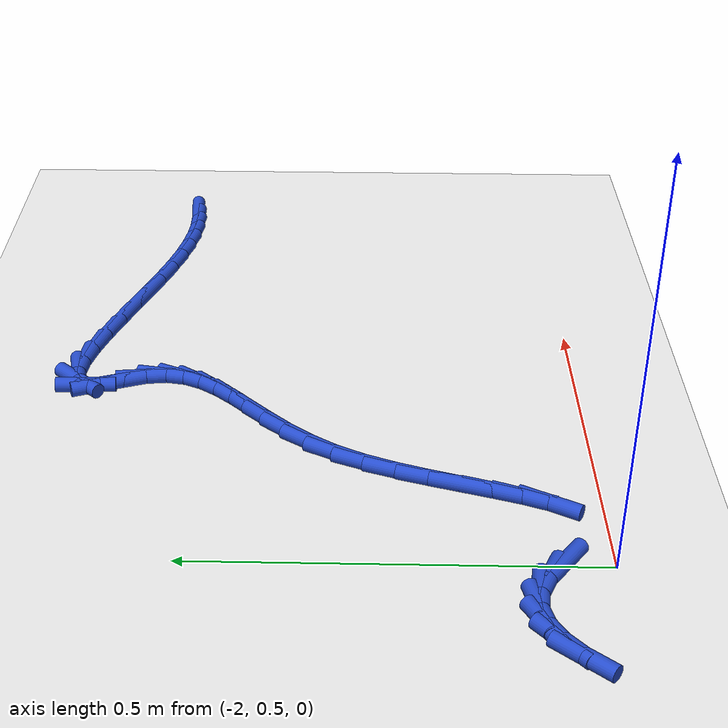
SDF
<sdf version="1.6">
 <world name="default">
  <model name="ground_plane">
   <static>1</static>
   <link name="link">
    <collision name="collision">
     <geometry><plane><normal>0 0 1</normal><size>100 100</size></plane></geometry>
     <surface><friction><ode><mu>100</mu><mu2>50</mu2></ode></friction></surface>
    </collision>
    <visual name="visual">
     <cast_shadows>0</cast_shadows>
     <geometry><plane><normal>0 0 1</normal><size>100 100</size></plane></geometry>
     <material>
      <script><uri>file://media/materials/scripts/gazebo.material</uri><name>Gazebo/WhiteGlow</name></script>
     </material>
    </visual>
   </link>
  </model>
  <model name="line">
   <link name="link_62">
    <pose>-1.1277201241595456 1.0498144381670482 0.01 0 1.57 0.07628248743457965</pose>
    <collision name="collision">
     <geometry><cylinder><radius>0.01</radius><length>0.08</length></cylinder></geometry>
    </collision>
    <visual name="visual">
     <material>
      <script><name>Gazebo/Blue</name><uri>file://media/materials/scripts/gazebo.material</uri></script>
     </material>
     <geometry><cylinder><radius>0.01</radius><length>0.08</length></cylinder></geometry>
    </visual>
   </link>
   <link name="link_63">
    <pose>-1.1555800375514933 1.0476850828183537 0.01 0 1.57 -0.005641831955613951</pose>
    <collision name="collision">
     <geometry><cylinder><radius>0.01</radius><length>0.08</length></cylinder></geometry>
    </collision>
    <visual name="visual">
     <material>
      <script><name>Gazebo/Blue</name><uri>file://media/materials/scripts/gazebo.material</uri></script>
     </material>
     <geometry><cylinder><radius>0.01</radius><length>0.08</length></cylinder></geometry>
    </visual>
   </link>
   <link name="link_64">
    <pose>-1.184237213135885 1.0478467635027735 0.01 0 1.57 -0.08370952217097634</pose>
    <collision name="collision">
     <geometry><cylinder><radius>0.01</radius><length>0.08</length></cylinder></geometry>
    </collision>
    <visual name="visual">
     <material>
      <script><name>Gazebo/Blue</name><uri>file://media/materials/scripts/gazebo.material</uri></script>
     </material>
     <geometry><cylinder><radius>0.01</radius><length>0.08</length></cylinder></geometry>
    </visual>
   </link>
   <link name="link_65">
    <pose>-1.2141358626233358 1.0503554275446507 0.01 0 1.57 -0.1542716616432093</pose>
    <collision name="collision">
     <geometry><cylinder><radius>0.01</radius><length>0.08</length></cylinder></geometry>
    </collision>
    <visual name="visual">
     <material>
      <script><name>Gazebo/Blue</name><uri>file://media/materials/scripts/gazebo.material</uri></script>
     </material>
     <geometry><cylinder><radius>0.01</radius><length>0.08</length></cylinder></geometry>
    </visual>
   </link>
   <link name="link_66">
    <pose>-1.2457201977244614 1.0552670222683287 0.01 0 1.57 -0.2152298746873299</pose>
    <collision name="collision">
     <geometry><cylinder><radius>0.01</radius><length>0.08</length></cylinder></geometry>
    </collision>
    <visual name="visual">
     <material>
      <script><name>Gazebo/Blue</name><uri>file://media/materials/scripts/gazebo.material</uri></script>
     </material>
     <geometry><cylinder><radius>0.01</radius><length>0.08</length></cylinder></geometry>
    </visual>
   </link>
   <link name="link_67">
    <pose>-1.279434430149878 1.062637494998151 0.01 0 1.57 -0.26595648585456066</pose>
    <collision name="collision">
     <geometry><cylinder><radius>0.01</radius><length>0.08</length></cylinder></geometry>
    </collision>
    <visual name="visual">
     <material>
      <script><name>Gazebo/Blue</name><uri>file://media/materials/scripts/gazebo.material</uri></script>
     </material>
     <geometry><cylinder><radius>0.01</radius><length>0.08</length></cylinder></geometry>
    </visual>
   </link>
   <link name="link_68">
    <pose>-1.3157227716101991 1.0725227930584595 0.01 0 1.57 -0.3067148833372153</pose>
    <collision name="collision">
     <geometry><cylinder><radius>0.01</radius><length>0.08</length></cylinder></geometry>
    </collision>
    <visual name="visual">
     <material>
      <script><name>Gazebo/Blue</name><uri>file://media/materials/scripts/gazebo.material</uri></script>
     </material>
     <geometry><cylinder><radius>0.01</radius><length>0.08</length></cylinder></geometry>
    </visual>
   </link>
   <link name="link_69">
    <pose>-1.3550069654204289 1.0849644546546386 0.01 0 1.57 -0.3336329036697023</pose>
    <collision name="collision">
     <geometry><cylinder><radius>0.01</radius><length>0.08</length></cylinder></geometry>
    </collision>
    <visual name="visual">
     <material>
      <script><name>Gazebo/Blue</name><uri>file://media/materials/scripts/gazebo.material</uri></script>
     </material>
     <geometry><cylinder><radius>0.01</radius><length>0.08</length></cylinder></geometry>
    </visual>
   </link>
   <link name="link_70">
    <pose>-1.3968958062239416 1.0994826690573574 0.01 0 1.57 -0.3445390470672556</pose>
    <collision name="collision">
     <geometry><cylinder><radius>0.01</radius><length>0.08</length></cylinder></geometry>
    </collision>
    <visual name="visual">
     <material>
      <script><name>Gazebo/Blue</name><uri>file://media/materials/scripts/gazebo.material</uri></script>
     </material>
     <geometry><cylinder><radius>0.01</radius><length>0.08</length></cylinder></geometry>
    </visual>
   </link>
   <link name="link_71">
    <pose>-1.4399757701598996 1.1149420064536801 0.01 0 1.57 -0.34178565242473385</pose>
    <collision name="collision">
     <geometry><cylinder><radius>0.01</radius><length>0.08</length></cylinder></geometry>
    </collision>
    <visual name="visual">
     <material>
      <script><name>Gazebo/Blue</name><uri>file://media/materials/scripts/gazebo.material</uri></script>
     </material>
     <geometry><cylinder><radius>0.01</radius><length>0.08</length></cylinder></geometry>
    </visual>
   </link>
   <link name="link_72">
    <pose>-1.4827683004644931 1.1301653310338857 0.01 0 1.57 -0.3247017369798717</pose>
    <collision name="collision">
     <geometry><cylinder><radius>0.01</radius><length>0.08</length></cylinder></geometry>
    </collision>
    <visual name="visual">
     <material>
      <script><name>Gazebo/Blue</name><uri>file://media/materials/scripts/gazebo.material</uri></script>
     </material>
     <geometry><cylinder><radius>0.01</radius><length>0.08</length></cylinder></geometry>
    </visual>
   </link>
   <link name="link_73">
    <pose>-1.523794840373912 1.143975506988253 0.01 0 1.57 -0.2886691469584685</pose>
    <collision name="collision">
     <geometry><cylinder><radius>0.01</radius><length>0.08</length></cylinder></geometry>
    </collision>
    <visual name="visual">
     <material>
      <script><name>Gazebo/Blue</name><uri>file://media/materials/scripts/gazebo.material</uri></script>
     </material>
     <geometry><cylinder><radius>0.01</radius><length>0.08</length></cylinder></geometry>
    </visual>
   </link>
   <link name="link_74">
    <pose>-1.5615768331243458 1.1551953985070593 0.01 0 1.57 -0.2217238565416612</pose>
    <collision name="collision">
     <geometry><cylinder><radius>0.01</radius><length>0.08</length></cylinder></geometry>
    </collision>
    <visual name="visual">
     <material>
      <script><name>Gazebo/Blue</name><uri>file://media/materials/scripts/gazebo.material</uri></script>
     </material>
     <geometry><cylinder><radius>0.01</radius><length>0.08</length></cylinder></geometry>
    </visual>
   </link>
   <link name="link_75">
    <pose>-1.5946357219519847 1.162647869780584 0.01 0 1.57 -0.09310952172858304</pose>
    <collision name="collision">
     <geometry><cylinder><radius>0.01</radius><length>0.08</length></cylinder></geometry>
    </collision>
    <visual name="visual">
     <material>
      <script><name>Gazebo/Blue</name><uri>file://media/materials/scripts/gazebo.material</uri></script>
     </material>
     <geometry><cylinder><radius>0.01</radius><length>0.08</length></cylinder></geometry>
    </visual>
   </link>
   <link name="link_76">
    <pose>-1.6214929500930175 1.1651557849991054 0.01 0 1.57 0.18625892993723173</pose>
    <collision name="collision">
     <geometry><cylinder><radius>0.01</radius><length>0.08</length></cylinder></geometry>
    </collision>
    <visual name="visual">
     <material>
      <script><name>Gazebo/Blue</name><uri>file://media/materials/scripts/gazebo.material</uri></script>
     </material>
     <geometry><cylinder><radius>0.01</radius><length>0.08</length></cylinder></geometry>
    </visual>
   </link>
   <link name="link_77">
    <pose>-1.640669960783634 1.1615420083529016 0.01 0 1.57 0.8281018526046393</pose>
    <collision name="collision">
     <geometry><cylinder><radius>0.01</radius><length>0.08</length></cylinder></geometry>
    </collision>
    <visual name="visual">
     <material>
      <script><name>Gazebo/Blue</name><uri>file://media/materials/scripts/gazebo.material</uri></script>
     </material>
     <geometry><cylinder><radius>0.01</radius><length>0.08</length></cylinder></geometry>
    </visual>
   </link>
   <link name="link_78">
    <pose>-1.6506881972600245 1.1506294040322507 0.01 0 1.57 -1.5388955093673296</pose>
    <collision name="collision">
     <geometry><cylinder><radius>0.01</radius><length>0.08</length></cylinder></geometry>
    </collision>
    <visual name="visual">
     <material>
      <script><name>Gazebo/Blue</name><uri>file://media/materials/scripts/gazebo.material</uri></script>
     </material>
     <geometry><cylinder><radius>0.01</radius><length>0.08</length></cylinder></geometry>
    </visual>
   </link>
   <link name="link_79">
    <pose>-1.650069483856134 1.1312410761108918 0.01 0 1.57 -1.2121774962967475</pose>
    <collision name="collision">
     <geometry><cylinder><radius>0.01</radius><length>0.08</length></cylinder></geometry>
    </collision>
    <visual name="visual">
     <material>
      <script><name>Gazebo/Blue</name><uri>file://media/materials/scripts/gazebo.material</uri></script>
     </material>
     <geometry><cylinder><radius>0.01</radius><length>0.08</length></cylinder></geometry>
    </visual>
   </link>
   <link name="link_80">
    <pose>-1.6397549625357062 1.1037229775235444 0.01 0 1.57 -1.2237248663936668</pose>
    <collision name="collision">
     <geometry><cylinder><radius>0.01</radius><length>0.08</length></cylinder></geometry>
    </collision>
    <visual name="visual">
     <material>
      <script><name>Gazebo/Blue</name><uri>file://media/materials/scripts/gazebo.material</uri></script>
     </material>
     <geometry><cylinder><radius>0.01</radius><length>0.08</length></cylinder></geometry>
    </visual>
   </link>
   <link name="link_81">
    <pose>-1.6288430753548777 1.0735557485010208 0.01 0 1.57 -1.4518259964928009</pose>
    <collision name="collision">
     <geometry><cylinder><radius>0.01</radius><length>0.08</length></cylinder></geometry>
    </collision>
    <visual name="visual">
     <material>
      <script><name>Gazebo/Blue</name><uri>file://media/materials/scripts/gazebo.material</uri></script>
     </material>
     <geometry><cylinder><radius>0.01</radius><length>0.08</length></cylinder></geometry>
    </visual>
   </link>
   <link name="link_82">
    <pose>-1.6255141956434513 1.0457071304805285 0.01 0 1.57 1.3953311796545813</pose>
    <collision name="collision">
     <geometry><cylinder><radius>0.01</radius><length>0.08</length></cylinder></geometry>
    </collision>
    <visual name="visual">
     <material>
      <script><name>Gazebo/Blue</name><uri>file://media/materials/scripts/gazebo.material</uri></script>
     </material>
     <geometry><cylinder><radius>0.01</radius><length>0.08</length></cylinder></geometry>
    </visual>
   </link>
   <link name="link_83">
    <pose>-1.6300107861077717 1.0203439828467478 0.01 0 1.57 1.1321482320393972</pose>
    <collision name="collision">
     <geometry><cylinder><radius>0.01</radius><length>0.08</length></cylinder></geometry>
    </collision>
    <visual name="visual">
     <material>
      <script><name>Gazebo/Blue</name><uri>file://media/materials/scripts/gazebo.material</uri></script>
     </material>
     <geometry><cylinder><radius>0.01</radius><length>0.08</length></cylinder></geometry>
    </visual>
   </link>
   <link name="link_84">
    <pose>-1.6410873067999305 0.9967332146604292 0.01 0 1.57 0.9425577557538525</pose>
    <collision name="collision">
     <geometry><cylinder><radius>0.01</radius><length>0.08</length></cylinder></geometry>
    </collision>
    <visual name="visual">
     <material>
      <script><name>Gazebo/Blue</name><uri>file://media/materials/scripts/gazebo.material</uri></script>
     </material>
     <geometry><cylinder><radius>0.01</radius><length>0.08</length></cylinder></geometry>
    </visual>
   </link>
   <link name="link_85">
    <pose>-1.6574982177720226 0.9741417349823239 0.01 0 1.57 0.827553270187208</pose>
    <collision name="collision">
     <geometry><cylinder><radius>0.01</radius><length>0.08</length></cylinder></geometry>
    </collision>
    <visual name="visual">
     <material>
      <script><name>Gazebo/Blue</name><uri>file://media/materials/scripts/gazebo.material</uri></script>
     </material>
     <geometry><cylinder><radius>0.01</radius><length>0.08</length></cylinder></geometry>
    </visual>
   </link>
   <link name="link_86">
    <pose>-1.6779979790761412 0.9518364528731819 0.01 0 1.57 0.7725798387005676</pose>
    <collision name="collision">
     <geometry><cylinder><radius>0.01</radius><length>0.08</length></cylinder></geometry>
    </collision>
    <visual name="visual">
     <material>
      <script><name>Gazebo/Blue</name><uri>file://media/materials/scripts/gazebo.material</uri></script>
     </material>
     <geometry><cylinder><radius>0.01</radius><length>0.08</length></cylinder></geometry>
    </visual>
   </link>
   <link name="link_87">
    <pose>-1.7013410507643785 0.9290842773937539 0.01 0 1.57 0.7647622476055279</pose>
    <collision name="collision">
     <geometry><cylinder><radius>0.01</radius><length>0.08</length></cylinder></geometry>
    </collision>
    <visual name="visual">
     <material>
      <script><name>Gazebo/Blue</name><uri>file://media/materials/scripts/gazebo.material</uri></script>
     </material>
     <geometry><cylinder><radius>0.01</radius><length>0.08</length></cylinder></geometry>
    </visual>
   </link>
   <link name="link_88">
    <pose>-1.7262818928888286 0.9051521176047906 0.01 0 1.57 0.7961951763216546</pose>
    <collision name="collision">
     <geometry><cylinder><radius>0.01</radius><length>0.08</length></cylinder></geometry>
    </collision>
    <visual name="visual">
     <material>
      <script><name>Gazebo/Blue</name><uri>file://media/materials/scripts/gazebo.material</uri></script>
     </material>
     <geometry><cylinder><radius>0.01</radius><length>0.08</length></cylinder></geometry>
    </visual>
   </link>
   <link name="link_89">
    <pose>-1.751574965501584 0.8793068825670426 0.01 0 1.57 0.8626039720072615</pose>
    <collision name="collision">
     <geometry><cylinder><radius>0.01</radius><length>0.08</length></cylinder></geometry>
    </collision>
    <visual name="visual">
     <material>
      <script><name>Gazebo/Blue</name><uri>file://media/materials/scripts/gazebo.material</uri></script>
     </material>
     <geometry><cylinder><radius>0.01</radius><length>0.08</length></cylinder></geometry>
    </visual>
   </link>
   <link name="link_90">
    <pose>-1.7759747286547394 0.8508154813412606 0.01 0 1.57 0.9610934121542455</pose>
    <collision name="collision">
     <geometry><cylinder><radius>0.01</radius><length>0.08</length></cylinder></geometry>
    </collision>
    <visual name="visual">
     <material>
      <script><name>Gazebo/Blue</name><uri>file://media/materials/scripts/gazebo.material</uri></script>
     </material>
     <geometry><cylinder><radius>0.01</radius><length>0.08</length></cylinder></geometry>
    </visual>
   </link>
   <link name="link_91">
    <pose>-1.7982356424003871 0.8189448229881945 0.01 0 1.57 1.0790997635239163</pose>
    <collision name="collision">
     <geometry><cylinder><radius>0.01</radius><length>0.08</length></cylinder></geometry>
    </collision>
    <visual name="visual">
     <material>
      <script><name>Gazebo/Blue</name><uri>file://media/materials/scripts/gazebo.material</uri></script>
     </material>
     <geometry><cylinder><radius>0.01</radius><length>0.08</length></cylinder></geometry>
    </visual>
   </link>
   <link name="link_92">
    <pose>-1.8173534338852138 0.7832486222638266 0.01 0 1.57 1.1717818792761356</pose>
    <collision name="collision">
     <geometry><cylinder><radius>0.01</radius><length>0.08</length></cylinder></geometry>
    </collision>
    <visual name="visual">
     <material>
      <script><name>Gazebo/Blue</name><uri>file://media/materials/scripts/gazebo.material</uri></script>
     </material>
     <geometry><cylinder><radius>0.01</radius><length>0.08</length></cylinder></geometry>
    </visual>
   </link>
   <link name="link_93">
    <pose>-1.8335770842530652 0.744770396686349 0.01 0 1.57 1.2323944319952271</pose>
    <collision name="collision">
     <geometry><cylinder><radius>0.01</radius><length>0.08</length></cylinder></geometry>
    </collision>
    <visual name="visual">
     <material>
      <script><name>Gazebo/Blue</name><uri>file://media/materials/scripts/gazebo.material</uri></script>
     </material>
     <geometry><cylinder><radius>0.01</radius><length>0.08</length></cylinder></geometry>
    </visual>
   </link>
   <link name="link_94">
    <pose>-1.847561237607524 0.7050358946699344 0.01 0 1.57 1.2663710245015896</pose>
    <collision name="collision">
     <geometry><cylinder><radius>0.01</radius><length>0.08</length></cylinder></geometry>
    </collision>
    <visual name="visual">
     <material>
      <script><name>Gazebo/Blue</name><uri>file://media/materials/scripts/gazebo.material</uri></script>
     </material>
     <geometry><cylinder><radius>0.01</radius><length>0.08</length></cylinder></geometry>
    </visual>
   </link>
   <link name="link_95">
    <pose>-1.8599607446406472 0.6655711102103247 0.01 0 1.57 1.2752288868269914</pose>
    <collision name="collision">
     <geometry><cylinder><radius>0.01</radius><length>0.08</length></cylinder></geometry>
    </collision>
    <visual name="visual">
     <material>
      <script><name>Gazebo/Blue</name><uri>file://media/materials/scripts/gazebo.material</uri></script>
     </material>
     <geometry><cylinder><radius>0.01</radius><length>0.08</length></cylinder></geometry>
    </visual>
   </link>
   <link name="link_96">
    <pose>-1.8714304560444917 0.6279020373032597 0.01 0 1.57 1.2557253726008444</pose>
    <collision name="collision">
     <geometry><cylinder><radius>0.01</radius><length>0.08</length></cylinder></geometry>
    </collision>
    <visual name="visual">
     <material>
      <script><name>Gazebo/Blue</name><uri>file://media/materials/scripts/gazebo.material</uri></script>
     </material>
     <geometry><cylinder><radius>0.01</radius><length>0.08</length></cylinder></geometry>
    </visual>
   </link>
   <link name="link_97">
    <pose>-1.882625222511114 0.5935546699444801 0.01 0 1.57 1.1968880948140639</pose>
    <collision name="collision">
     <geometry><cylinder><radius>0.01</radius><length>0.08</length></cylinder></geometry>
    </collision>
    <visual name="visual">
     <material>
      <script><name>Gazebo/Blue</name><uri>file://media/materials/scripts/gazebo.material</uri></script>
     </material>
     <geometry><cylinder><radius>0.01</radius><length>0.08</length></cylinder></geometry>
    </visual>
   </link>
   <link name="link_98">
    <pose>-1.8941998947325729 0.5640550021297268 0.01 0 1.57 1.071607555472523</pose>
    <collision name="collision">
     <geometry><cylinder><radius>0.01</radius><length>0.08</length></cylinder></geometry>
    </collision>
    <visual name="visual">
     <material>
      <script><name>Gazebo/Blue</name><uri>file://media/materials/scripts/gazebo.material</uri></script>
     </material>
     <geometry><cylinder><radius>0.01</radius><length>0.08</length></cylinder></geometry>
    </visual>
   </link>
   <link name="link_104">
    <pose>-2.005308473420821 0.5616700703775603 0.01 0 1.57 -0.6322995125087176</pose>
    <collision name="collision">
     <geometry><cylinder><radius>0.01</radius><length>0.08</length></cylinder></geometry>
    </collision>
    <visual name="visual">
     <material>
      <script><name>Gazebo/Blue</name><uri>file://media/materials/scripts/gazebo.material</uri></script>
     </material>
     <geometry><cylinder><radius>0.01</radius><length>0.08</length></cylinder></geometry>
    </visual>
   </link>
   <link name="link_105">
    <pose>-2.03121633578287 0.5806512740899024 0.01 0 1.57 -0.41589967675594547</pose>
    <collision name="collision">
     <geometry><cylinder><radius>0.01</radius><length>0.08</length></cylinder></geometry>
    </collision>
    <visual name="visual">
     <material>
      <script><name>Gazebo/Blue</name><uri>file://media/materials/scripts/gazebo.material</uri></script>
     </material>
     <geometry><cylinder><radius>0.01</radius><length>0.08</length></cylinder></geometry>
    </visual>
   </link>
   <link name="link_106">
    <pose>-2.0568309973679275 0.591964334387325 0.01 0 1.57 -0.10697361272005763</pose>
    <collision name="collision">
     <geometry><cylinder><radius>0.01</radius><length>0.08</length></cylinder></geometry>
    </collision>
    <visual name="visual">
     <material>
      <script><name>Gazebo/Blue</name><uri>file://media/materials/scripts/gazebo.material</uri></script>
     </material>
     <geometry><cylinder><radius>0.01</radius><length>0.08</length></cylinder></geometry>
    </visual>
   </link>
   <link name="link_107">
    <pose>-2.081784475289061 0.5946439270522734 0.01 0 1.57 0.21396234476740716</pose>
    <collision name="collision">
     <geometry><cylinder><radius>0.01</radius><length>0.08</length></cylinder></geometry>
    </collision>
    <visual name="visual">
     <material>
      <script><name>Gazebo/Blue</name><uri>file://media/materials/scripts/gazebo.material</uri></script>
     </material>
     <geometry><cylinder><radius>0.01</radius><length>0.08</length></cylinder></geometry>
    </visual>
   </link>
   <link name="link_108">
    <pose>-2.1059773075923087 0.5893871071563124 0.01 0 1.57 0.49164368801837804</pose>
    <collision name="collision">
     <geometry><cylinder><radius>0.01</radius><length>0.08</length></cylinder></geometry>
    </collision>
    <visual name="visual">
     <material>
      <script><name>Gazebo/Blue</name><uri>file://media/materials/scripts/gazebo.material</uri></script>
     </material>
     <geometry><cylinder><radius>0.01</radius><length>0.08</length></cylinder></geometry>
    </visual>
   </link>
   <link name="link_109">
    <pose>-2.1293102512256037 0.5768922849650567 0.01 0 1.57 0.7049265615221466</pose>
    <collision name="collision">
     <geometry><cylinder><radius>0.01</radius><length>0.08</length></cylinder></geometry>
    </collision>
    <visual name="visual">
     <material>
      <script><name>Gazebo/Blue</name><uri>file://media/materials/scripts/gazebo.material</uri></script>
     </material>
     <geometry><cylinder><radius>0.01</radius><length>0.08</length></cylinder></geometry>
    </visual>
   </link>
   <link name="link_110">
    <pose>-2.1516840631368788 0.5578578707441207 0.01 0 1.57 0.8623207588553552</pose>
    <collision name="collision">
     <geometry><cylinder><radius>0.01</radius><length>0.08</length></cylinder></geometry>
    </collision>
    <visual name="visual">
     <material>
      <script><name>Gazebo/Blue</name><uri>file://media/materials/scripts/gazebo.material</uri></script>
     </material>
     <geometry><cylinder><radius>0.01</radius><length>0.08</length></cylinder></geometry>
    </visual>
   </link>
  </model>
 </world>
</sdf>
